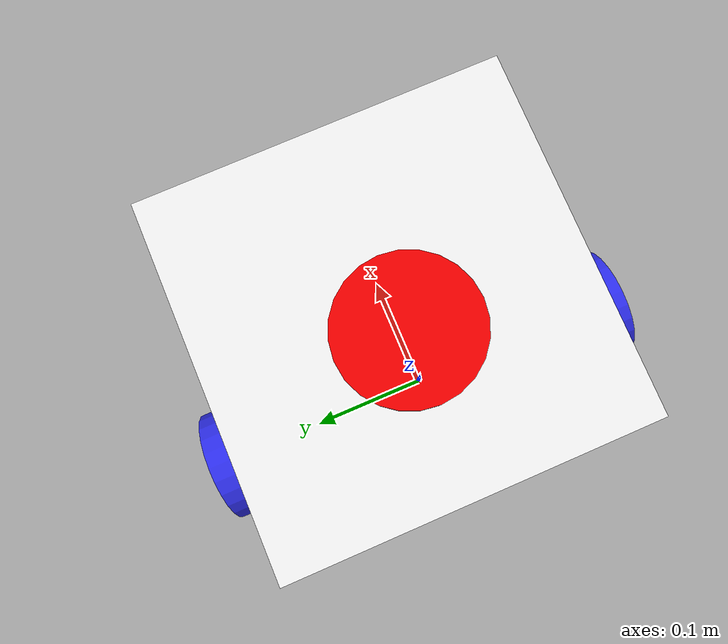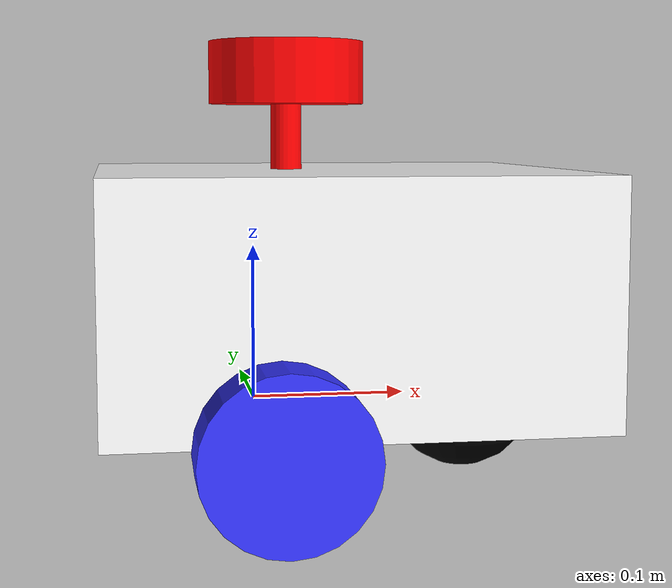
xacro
<?xml version="1.0"?>
<robot xmlns:xacro="http://www.ros.org/wiki/xacro"  name="robot">

<xacro:include filename = "ros2_control.xacro"/>

    <xacro:include filename="robot_core.xacro" />
     <xacro:include filename="lidar.xacro"/>

</robot>

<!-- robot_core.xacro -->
<robot xmlns:xacro="http://www.ros.org/wiki/xacro">
<xacro:include filename = "inertial_macros.xacro" />
  <!-- material colors-->

  <material name = "white">
  <color rgba="1 1 1 1"/>
  </material>

  <material name = "orange">
  <color rgba = "1 0.3 0.1 1"/>
  </material>

  <material name = "blue">
  <color rgba = "0.2 0.2 1 1"/>
  </material>

  <material name = "black">
  <color rgba = "0 0 0 1"/>
  </material>

  <material name = "red">
  <color rgba = "1 0 0 1"/>
  </material>

<!--making out links-->
<link name = "base_link">
</link>
<joint name="base_footprint_joint" type="fixed">
<parent link="base_link"/>
<child link="base_footprint"/>
<origin  xyz="0 0 0" rpy="0 0 0"/>
</joint>
<link name = "base_footprint">
</link>
<!--making joint-->
<joint name="chassis_joint" type="fixed">
<parent link="base_link" />
<child link ="chassis" />
<origin xyz="-0.1 0 0 "/> <!--behind base link chassis-->
</joint>

<link name = "chassis">
<visual>
<origin xyz="0.15 0 0.075"/>
<geometry>
<box size="0.3 0.3 0.15" />
</geometry>
<material name="white"/>
</visual>
<!-- collision sorting-->
<collision>
<origin xyz="0.15 0 0.075"/>
<geometry>
<box size="0.3 0.3 0.15" />
</geometry>
</collision>
<xacro:inertial_box mass="0.5" x="0.3" y="0.3" z="0.15">
<origin xyz="0.15 0 0.075" rpy="0 0 0"/>
</xacro:inertial_box>

<!--origin specification-->
</link>
<gazebo reference="chassis">
<material>Gazebo/White</material>
</gazebo>
<!--LEFT WHEEL LINK AND JOINT-->
<joint name="left_wheel_joint" type="continuous"> <!-- type is  continious joint as wheels rotate-->
<parent link = "base_link"/>
<child link = "left_wheel"/>
<origin xyz = "0 0.175 0" rpy="-${pi/2} 0 0" /> <!--The wheel by default is facing upwards, we want it to face downwards hence we rotate  anti-clockwiswe by 90 degrees to achieve this-->
<axis xyz=" 0 0 1" />
</joint>

<link name = "left_wheel">
<visual>
<geometry>
<cylinder radius = "0.05" length="0.04"/>
</geometry>
<material name="blue"/>
</visual>
<!--collision-->
<collision>
<geometry>
<cylinder radius = "0.05" length="0.04"/>
</geometry>
<material name="blue"/>
</collision>
<xacro:inertial_cylinder mass="0.1" length="0.04" radius="0.05">
<origin xyz="0 0 0" rpy="0 0 0"/>
</xacro:inertial_cylinder>
</link>
<gazebo reference="left_wheel">
<material>Gazebo/Blue</material>
</gazebo>
<!-- END OF LEFT WHEEL JOINT AND LINK INITIATION-->

<!-- RIGHT WHEEL LINK-->

<joint name="right_wheel_joint" type="continuous">
<parent link= "base_link"/>
<child link = "right_wheel"/>
<origin xyz="0 -0.175 0" rpy="${-pi/2} 0 0"/>
<axis xyz="0 0 -1"/>
</joint>

<link name="right_wheel">
<visual>
<geometry>
<cylinder radius="0.05" length="0.04" />
</geometry>
<material name="blue"/>
</visual>
<!--collision-->
<collision>
<geometry>
<cylinder radius="0.05" length="0.04" />
</geometry>
</collision>
<xacro:inertial_cylinder mass="0.1" length="0.04" radius="0.05">
<origin xyz="0 0 0" rpy="0 0 0"/>
</xacro:inertial_cylinder>
</link>
<gazebo reference="right_wheel">
<material>Gazebo/Blue</material>
</gazebo>
<!--END OF RIGHT WHEEL-->
<!-- CASTER WHEEL JOINT-->
<joint name="caster_wheel_joint" type="fixed">
<parent link="chassis"/>
<child link = "caster_wheel" />
<origin xyz= "0.24 0 0"/>
</joint>
<!--END OF CASTER WHEEL JOINT-->

<!--CASTER WHEEL LINK-->
<link name = "caster_wheel">
<visual>
<geometry>
<sphere radius="0.05"/>
</geometry>
<material name="black"/>
</visual>
<!--collision-->
<collision>
<geometry>
<sphere radius="0.05"/>
</geometry>
</collision>
<xacro:inertial_sphere mass="0.1" radius="0.05">
<origin xyz="0 0 0" rpy="0 0 0"/>
</xacro:inertial_sphere>
</link>
<gazebo reference="caster_wheel">
<material>Gazebo/Black</material>
<mu1 value="0.001"/>
<mu2 value="0.001"/>
</gazebo>
</robot>

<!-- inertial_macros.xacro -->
<robot xmlns:xacro="http://www.ros.org/wiki/xacro" >
<!-- Specify some standard inertial calculations https://en.wikipedia.org/wiki/List_of_moments_of_inertia -->
    <!-- These make use of xacro's mathematical functionality -->

    <xacro:macro name="inertial_sphere" params="mass radius *origin">
        <inertial>
            <xacro:insert_block name="origin"/>
            <mass value="${mass}" />
            <inertia ixx="${(2/5) * mass * (radius*radius)}" ixy="0.0" ixz="0.0"
                    iyy="${(2/5) * mass * (radius*radius)}" iyz="0.0"
                    izz="${(2/5) * mass * (radius*radius)}" />
        </inertial>
    </xacro:macro>

    <xacro:macro name="inertial_box" params="mass x y z *origin">
        <inertial>
            <xacro:insert_block name="origin"/>
            <mass value="${mass}" />
            <inertia ixx="${(1/12) * mass * (y*y+z*z)}" ixy="0.0" ixz="0.0"
                    iyy="${(1/12) * mass * (x*x+z*z)}" iyz="0.0"
                    izz="${(1/12) * mass * (x*x+y*y)}" />
        </inertial>
    </xacro:macro>

    <xacro:macro name="inertial_cylinder" params="mass length radius *origin">
        <inertial>
            <xacro:insert_block name="origin"/>
            <mass value="${mass}" />
            <inertia ixx="${(1/12) * mass * (3*radius*radius + length*length)}" ixy="0.0" ixz="0.0"
                    iyy="${(1/12) * mass * (3*radius*radius + length*length)}" iyz="0.0"
                    izz="${(1/2) * mass * (radius*radius)}" />
        </inertial>
    </xacro:macro>

</robot>

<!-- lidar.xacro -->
<robot xmlns:xacro="http://www.ros.org/wiki/xacro">
<!--joint-->
<joint name = "laser_joint" type ="fixed">
<parent link="chassis"/>
<child link = "laser_frame"/>
<origin xyz="0.122 0 0.212" rpy="0 0 0"/>
</joint>

 <!--link-->
 <link name = "laser_frame">
 <visual>
<geometry>
<cylinder radius = "0.05" length="0.04"/>
</geometry>
<material name="red"/>
</visual>
 <visual>
<origin xyz="0 0 -0.05"/>
<geometry>
<cylinder radius="0.01" length="0.1"/>
</geometry>
 <material name="red"/>
  </visual>
<!--collision-->
<collision>
<geometry>
<cylinder radius = "0.05" length="0.04"/>
</geometry>
</collision>
<xacro:inertial_cylinder mass="0.1" length="0.04" radius="0.05">
<origin xyz="0 0 0" rpy="0 0 0"/>
</xacro:inertial_cylinder>
 </link>
 <gazebo reference="laser_frame">
        <material>Gazebo/Red</material>

        <sensor name="laser" type="ray">
            <pose> 0 0 0 0 0 0 </pose>
            <visualize>true</visualize>
            <update_rate>10</update_rate>
            <ray>
                <scan>
                    <horizontal>
                        <samples>360</samples>
                        <resolution>1</resolution>
                        <min_angle>-3.14</min_angle>
                        <max_angle>3.14</max_angle>
                    </horizontal>
                </scan>
                <range>
                    <min>0.3</min>
                    <max>20.0</max>
                    <resolution>0.01</resolution>
                </range>
            </ray>
            <plugin name="laser_controller" filename="libgazebo_ros_ray_sensor.so">
                <ros>
                    <argument>~/out:=scan</argument>
                </ros>
                <output_type>sensor_msgs/LaserScan</output_type>
                <frame_name>laser_frame</frame_name>
            </plugin>
        </sensor>
    </gazebo>
</robot>
